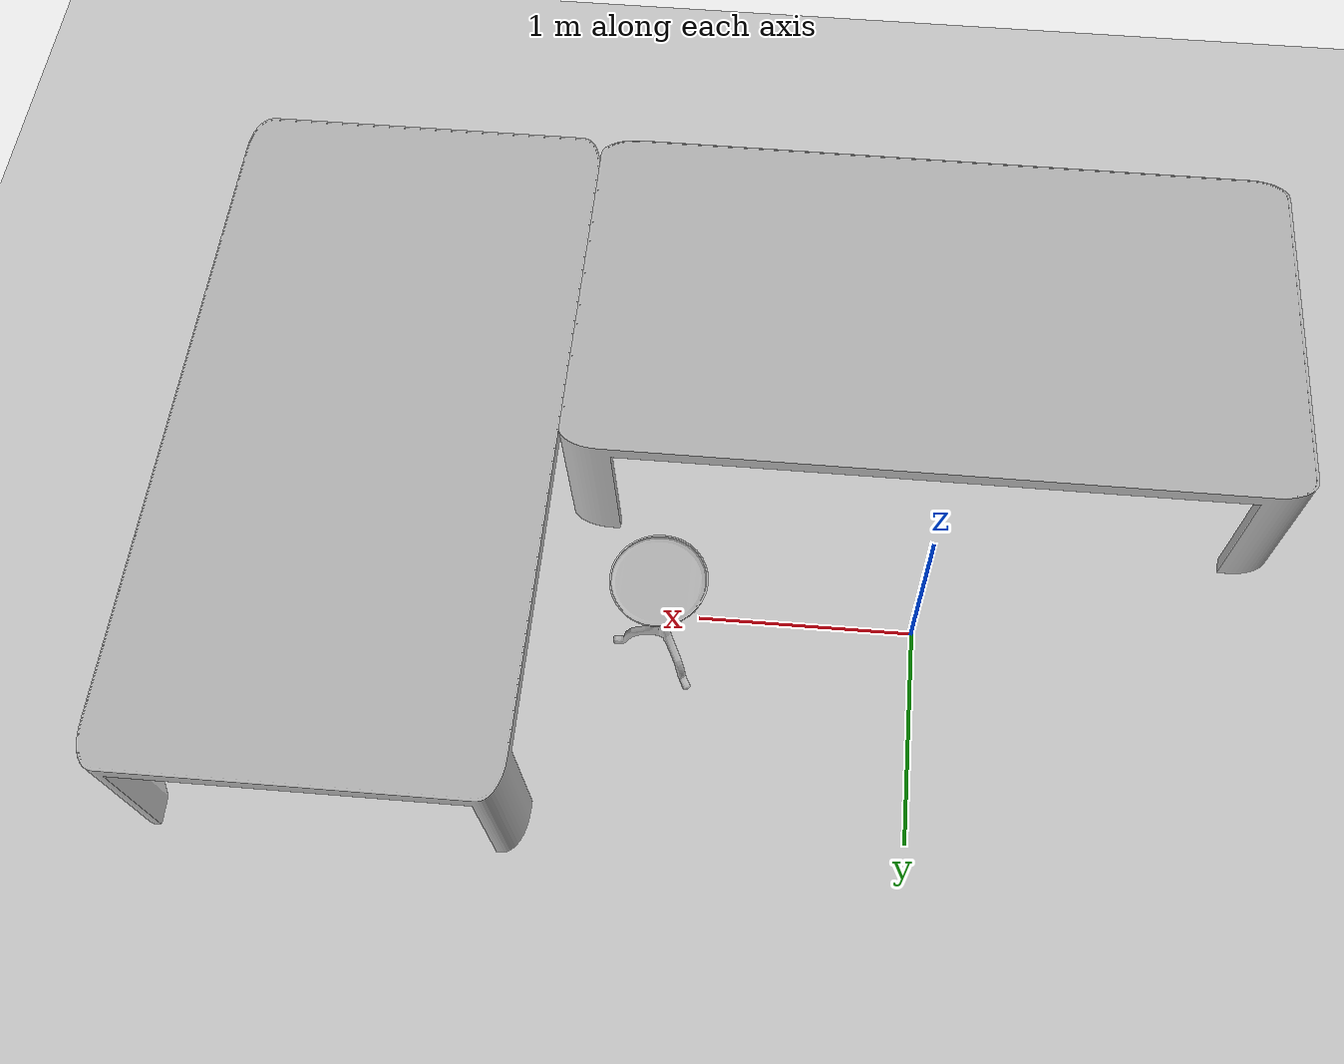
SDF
<sdf version="1.7">
 <world name="default">
  <light name="sun" type="directional">
   <pose>0 0 10 0 -0 0</pose>
   <diffuse>0.8 0.8 0.8 1</diffuse>
   <specular>0.2 0.2 0.2 1</specular>
   <attenuation>
    <range>1000</range>
    <constant>0.9</constant>
    <linear>0.01</linear>
    <quadratic>0.001</quadratic>
   </attenuation>
   <direction>-0.5 0.1 -0.9</direction>
   <spot><inner_angle>0</inner_angle><outer_angle>0</outer_angle><falloff>0</falloff></spot>
  </light>
  <model name="ground_plane">
   <static>1</static>
   <link name="link">
    <collision name="collision">
     <geometry><plane><normal>0 0 1</normal><size>100 100</size></plane></geometry>
     <surface>
      <contact><collide_bitmask>65535</collide_bitmask></contact>
      <friction><ode><mu>100</mu><mu2>50</mu2></ode></friction>
     </surface>
    </collision>
    <visual name="visual">
     <cast_shadows>0</cast_shadows>
     <geometry><plane><normal>0 0 1</normal><size>100 100</size></plane></geometry>
     <material>
      <script><uri>file://media/materials/scripts/gazebo.material</uri><name>Gazebo/Grey</name></script>
     </material>
    </visual>
   </link>
  </model>
  <gravity>0 0 -9.8</gravity>
  <magnetic_field>6e-06 2.3e-05 -4.2e-05</magnetic_field>
  <atmosphere type="adiabatic"/>
  <physics type="ode">
   <max_step_size>0.001</max_step_size>
   <real_time_factor>1</real_time_factor>
   <real_time_update_rate>1000</real_time_update_rate>
  </physics>
  <scene><ambient>0.4 0.4 0.4 1</ambient><background>0.7 0.7 0.7 1</background><shadows>1</shadows></scene>
  <spherical_coordinates>
   <surface_model>EARTH_WGS84</surface_model>
   <latitude_deg>0</latitude_deg>
   <longitude_deg>0</longitude_deg>
   <elevation>0</elevation>
   <heading_deg>0</heading_deg>
  </spherical_coordinates>
  <model name="robot_base">
   <static>1</static>
   <link name="link">
    <pose>0 0 0.73 0 -0 0</pose>
    <collision name="surface">
     <pose>0 0 -0.015 0 -0 0</pose>
     <geometry><box><size>2.35 1 0.03</size></box></geometry>
    </collision>
    <visual name="visual">
     <geometry><mesh><uri>model://robot_base/meshes/robot_base.dae</uri></mesh></geometry>
    </visual>
   </link>
   <pose>1.14482 0.144255 0 0 -0 0</pose>
  </model>
  <model name="table_new">
   <static>1</static>
   <link name="link">
    <collision name="collision">
     <geometry><mesh><uri>model://table_new/meshes/table_new.stl</uri><scale>2.5 2.5 2.5</scale></mesh></geometry>
    </collision>
    <visual name="visual">
     <geometry><mesh><uri>model://table_new/meshes/table_new.stl</uri><scale>2.5 2.5 2.5</scale></mesh></geometry>
    </visual>
   </link>
   <pose>-0.013854 -1.31998 0 0 -0 0</pose>
  </model>
  <model name="table_new_0">
   <static>1</static>
   <link name="link">
    <collision name="collision">
     <geometry><mesh><uri>model://table_new/meshes/table_new.stl</uri><scale>2.5 2.5 2.5</scale></mesh></geometry>
    </collision>
    <visual name="visual">
     <geometry><mesh><uri>model://table_new/meshes/table_new.stl</uri><scale>2.5 2.5 2.5</scale></mesh></geometry>
    </visual>
   </link>
   <pose>2.53973 -0.505004 0 0 0 -1.56929</pose>
  </model>
 </world>
</sdf>
